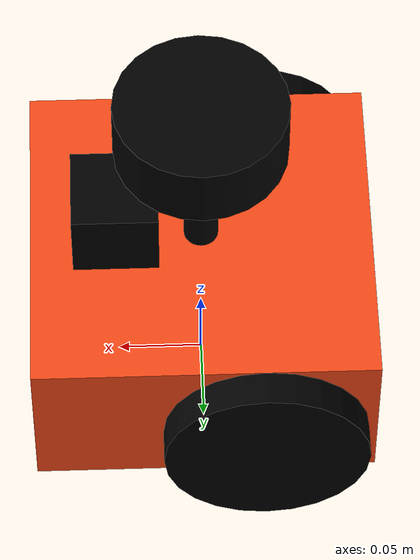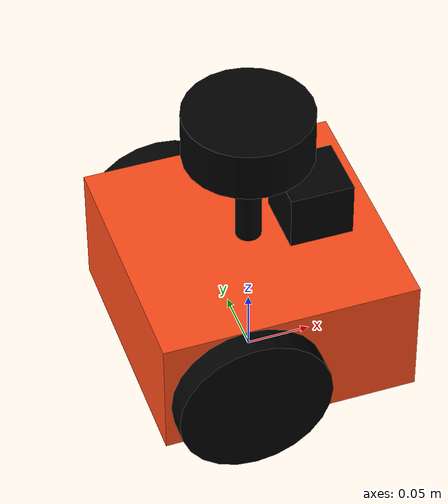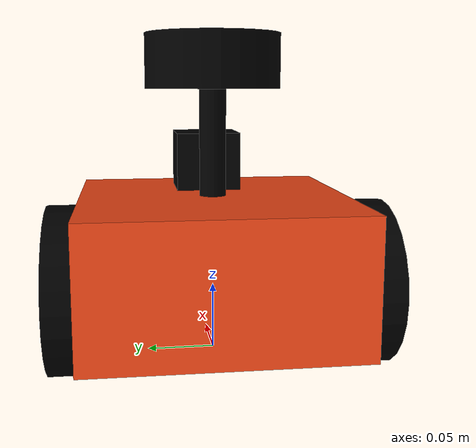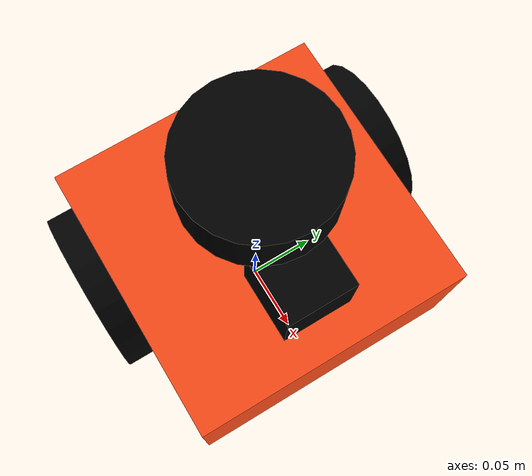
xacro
<?xml version="1.0"?>
<robot name="my_robot" xmlns:xacro="http://www.ros.org/wiki/xacro">

    <xacro:include filename="$(find bot_description)/urdf/common_properties.xacro" />
    <xacro:include filename="$(find bot_description)/urdf/mobile_base.xacro" />
    <xacro:include filename="$(find bot_description)/urdf/mobile_base_gazebo.xacro" />
    <xacro:include filename="$(find bot_description)/urdf/camera.xacro" />
    <xacro:include filename="$(find bot_description)/urdf/lidar.xacro" />

</robot>

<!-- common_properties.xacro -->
<robot xmlns:xacro="http://www.ros.org/wiki/xacro">

    <material name="orange">
        <color rgba="1 0.3 0.1 1"/>
    </material>

    <material name="blue">
        <color rgba="0.2 0.2 1 1"/>
    </material>

    <material name="black">
        <color rgba="0 0 0 1"/>
    </material>

    <xacro:macro name="box_inertia" params="m x y z o_xyz o_rpy">
        <inertial>
            <mass value="${m}" />
            <origin xyz="${o_xyz}" rpy="${o_rpy}" />
            <inertia ixx="${(m/12) * (z*z + y*y)}" ixy="0" ixz="0"
                    iyy="${(m/12) * (x*x + z*z)}" iyz="0"
                    izz="${(m/12) * (x*x + y*y)}" />
        </inertial>
    </xacro:macro>

    <xacro:macro name="cylinder_inertia" params="m r l o_xyz o_rpy">
        <inertial>
            <mass value="${m}" />
            <origin xyz="${o_xyz}" rpy="${o_rpy}" />
            <inertia ixx="${(m/12) * (3*r*r + l*l)}" ixy="0" ixz="0"
                    iyy="${(m/12) * (3*r*r + l*l)}" iyz="0"
                    izz="${(m/2) * (r*r)}" />
        </inertial>
    </xacro:macro>

    <xacro:macro name="sphere_inertia" params="m r o_xyz o_rpy">
        <inertial>
            <mass value="${m}" />
            <origin xyz="${o_xyz}" rpy="${o_rpy}" />
            <inertia ixx="${(2/5) * m * r * r}" ixy="0" ixz="0"
                    iyy="${(2/5) * m * r * r}" iyz="0"
                    izz="${(2/5) * m * r * r}" />
        </inertial>
    </xacro:macro>

</robot>

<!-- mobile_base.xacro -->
<robot xmlns:xacro="http://www.ros.org/wiki/xacro">

    <xacro:property name="base_length" value="0.2" />
    <xacro:property name="base_width" value="0.2" />
    <xacro:property name="base_height" value="0.1" />
    <xacro:property name="wheel_radius" value="0.06" />
    <xacro:property name="wheel_length" value="0.02" />
    <xacro:property name="caster_wheel_radius" value="0.021" />

    <link name="base_footprint" />

    <link name="base_link">
        <visual>
            <geometry>
                <box size="${base_length} ${base_width} ${base_height}" />
            </geometry>
            <origin xyz="0 0 ${base_height / 2.0}" rpy="0 0 0" />
            <material name="orange" />
        </visual>
        <collision>
            <geometry>
                <box size="${base_length} ${base_width} ${base_height}" />
            </geometry>
            <origin xyz="0 0 ${base_height / 2.0}" rpy="0 0 0" />
        </collision>
        <xacro:box_inertia m="5.0" x="${base_length}" y="${base_width}" z="${base_height}" o_xyz="0 0 ${base_height / 2.0}" o_rpy="0 0 0" />
    </link>

    <xacro:macro name="wheel_link" params="prefix">
        <link name="${prefix}_wheel_link">
            <visual>
                <geometry>
                    <cylinder radius="${wheel_radius}" length="${wheel_length}" />
                </geometry>
                <origin xyz="0 0 0" rpy="${pi / 2.0} 0 0" />
                <material name="black" />
            </visual>
            <collision>
                <geometry>
                    <sphere radius="${wheel_radius}" />
                </geometry>
                <origin xyz="0 0 0" rpy="0 0 0" />
            </collision>
            <xacro:cylinder_inertia m="1.0" r="${wheel_radius}" l="${wheel_length}" o_xyz="0 0 0" o_rpy="${pi / 2.0} 0 0" />
        </link>
    </xacro:macro>

    <xacro:wheel_link prefix="right" />
    <xacro:wheel_link prefix="left" />

    <link name="caster_wheel_link">
        <visual>
            <geometry>
                <sphere radius="${caster_wheel_radius}"/>
            </geometry>
            <origin xyz="0 0 0" rpy="0 0 0" />
            <material name="blue" />
        </visual>
        <collision>
            <geometry>
                <sphere radius="${caster_wheel_radius}"/>
            </geometry>
            <origin xyz="0 0 0" rpy="0 0 0" />
        </collision>
        <xacro:sphere_inertia m="0.5" r="${caster_wheel_radius}" o_xyz="0 0 0" o_rpy="0 0 0" />
    </link>

    <joint name="base_joint" type="fixed">
        <parent link="base_footprint" />
        <child link="base_link" />
        <origin xyz="0 0 .02" rpy="0 0 0" />
    </joint>

    <joint name="base_right_wheel_joint" type="continuous">
        <parent link="base_link" />
        <child link="right_wheel_link" />
        <origin xyz="-0.035 ${-(base_width + wheel_length) / 2.0} 0.04" rpy="0.0 0.0 0.0"/>
        <axis xyz="0 1 0" />
    </joint>

    <joint name="base_left_wheel_joint" type="continuous">
        <parent link="base_link" />
        <child link="left_wheel_link" />
        <origin xyz="-0.035 ${(base_width + wheel_length) / 2.0} 0.04" rpy="0.0 0.0 0.0"/>
        <axis xyz="0 1 0" />
    </joint>

    <joint name="base_caster_wheel_joint" type="fixed">
        <parent link="base_link" />
        <child link="caster_wheel_link" />
        <origin xyz="0.061 0.0 0.0" rpy="0.0 0.0 0.0"/>
    </joint>

</robot>

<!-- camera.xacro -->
<robot xmlns:xacro="http://www.ros.org/wiki/xacro" >

    <xacro:include filename="$(find bot_description)/urdf/inertial_macros.xacro" />
    <xacro:property name="camera_link" value="0.05" />
    <xacro:property name="height3" value="0.05" />
    <xacro:property name="axel_offset" value="0.05" />

    <joint name="camera_joint" type="fixed">
        <axis xyz="0 1 0" />
        <origin xyz="${camera_link} 0 .120" rpy="0 0 0"/>
        <parent link="base_link"/>
        <child link="camera_link"/>
    </joint>

  <link name="camera_link">
    <collision>
      <origin xyz="0 0 0" rpy="0 0 0"/>
      <geometry>
    <box size="${camera_link} ${camera_link} ${camera_link}"/>
      </geometry>
    </collision>

    <visual>
      <origin xyz="0 0 0" rpy="0 0 0"/>
      <geometry>
    <box size="${camera_link} ${camera_link} ${camera_link}"/>
      </geometry>
      <material name="black"/>
    </visual>

    <inertial>
      <mass value="1e-5" />
      <origin xyz="0 0 0" rpy="0 0 0"/>
      <inertia ixx="1e-6" ixy="0" ixz="0" iyy="1e-6" iyz="0" izz="1e-6" />
    </inertial>
  </link>

  <gazebo reference="camera_link">
  <material>Gazebo/Black</material>
    <sensor type="camera" name="camera1">
      <update_rate>30.0</update_rate>
      <camera name="head">
        <horizontal_fov>1.3962634</horizontal_fov>
        <image>
          <width>800</width>
          <height>800</height>
          <format>R8G8B8</format>
        </image>
        <clip>
          <near>0.02</near>
          <far>300</far>
        </clip>
        <noise>
          <type>gaussian</type>
          <!-- Noise is sampled independently per pixel on each frame.
               That pixel's noise value is added to each of its color
               channels, which at that point lie in the range [0,1]. -->
          <mean>0.0</mean>
          <stddev>0.007</stddev>
        </noise>
      </camera>
      <plugin name="camera_controller" filename="libgazebo_ros_camera.so">
        <alwaysOn>true</alwaysOn>
        <updateRate>0.0</updateRate>
        <cameraName>rrbot/camera1</cameraName>
        <imageTopicName>image_raw</imageTopicName>
        <cameraInfoTopicName>camera_info</cameraInfoTopicName>
        <frameName>camera_link</frameName>
        <hackBaseline>0.07</hackBaseline>
        <distortionK1>0.0</distortionK1>
        <distortionK2>0.0</distortionK2>
        <distortionK3>0.0</distortionK3>
        <distortionT1>0.0</distortionT1>
        <distortionT2>0.0</distortionT2>
      </plugin>
    </sensor>
  </gazebo>

</robot>

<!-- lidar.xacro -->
<robot xmlns:xacro="http://www.ros.org/wiki/xacro" >

    <xacro:include filename="$(find bot_description)/urdf/inertial_macros.xacro" />

    <joint name="laser_joint" type="fixed">
        <parent link="base_link"/>
        <child link="laser_frame"/>
        <origin xyz="0 0 0.2" rpy="0 0 0"/>
    </joint>

    <link name="laser_frame">
        <visual>
            <geometry>
                <cylinder radius="0.05" length="0.04"/>
            </geometry>
            <material name="black"/>
        </visual>
        <visual>
            <origin xyz="0 0 -0.05"/>
            <geometry>
                <cylinder radius="0.01" length="0.1"/>
            </geometry>
            <material name="black"/>
        </visual>
        <collision>
            <geometry>
                <cylinder radius="0.05" length="0.04"/>
            </geometry>
        </collision>
        <xacro:inertial_cylinder mass="0.1" length="0.04" radius="0.05">
            <origin xyz="0 0 0" rpy="0 0 0"/>
        </xacro:inertial_cylinder>
    </link>

    <gazebo reference="laser_frame">
        <material>Gazebo/Black</material>

        <sensor name="laser" type="ray">
            <pose> 0 0 0 0 0 0 </pose>
            <visualize>true</visualize>
            <update_rate>10</update_rate>
            <ray>
                <scan>
                    <horizontal>
                        <samples>360</samples>
                        <min_angle>-3.14</min_angle>
                        <max_angle>3.14</max_angle>
                    </horizontal>
                </scan>
                <range>
                    <min>0.3</min>
                    <max>3</max>
                </range>
            </ray>
            <plugin name="laser_controller" filename="libgazebo_ros_ray_sensor.so">
                <ros>
                    <argument>~/out:=scan</argument>
                </ros>
                <output_type>sensor_msgs/LaserScan</output_type>
                <frame_name>laser_frame</frame_name>
            </plugin>
        </sensor>
    </gazebo>

</robot>
